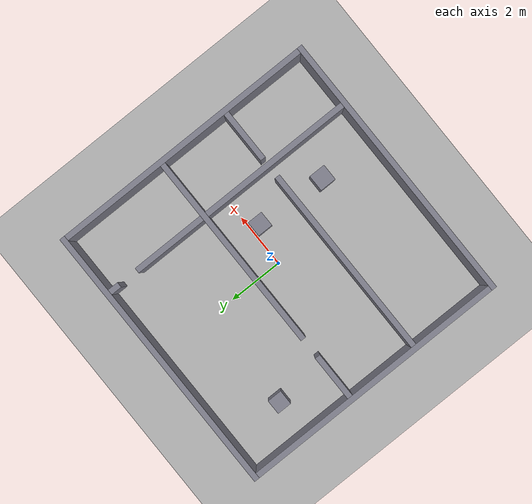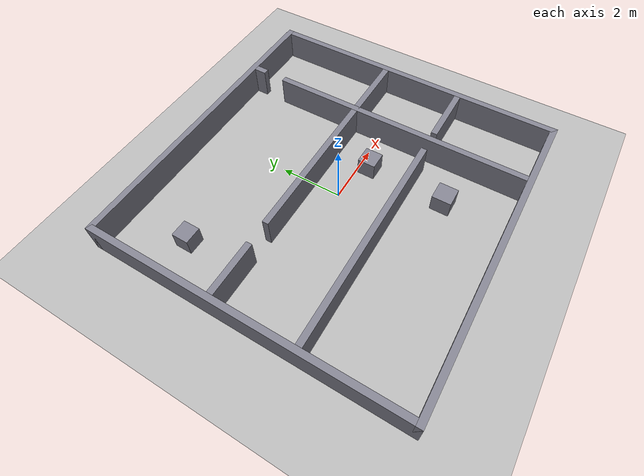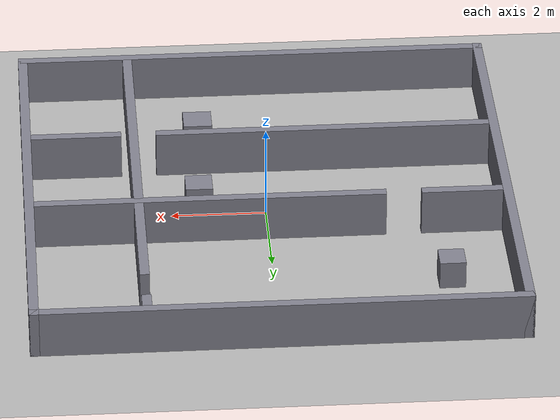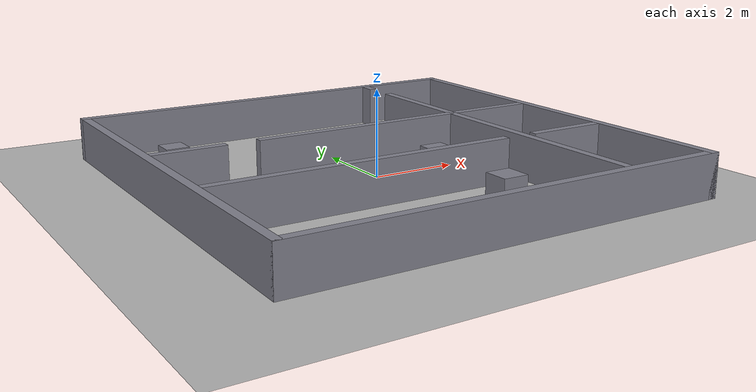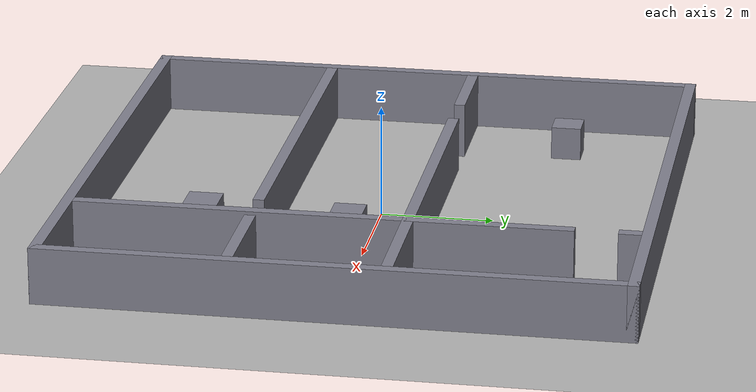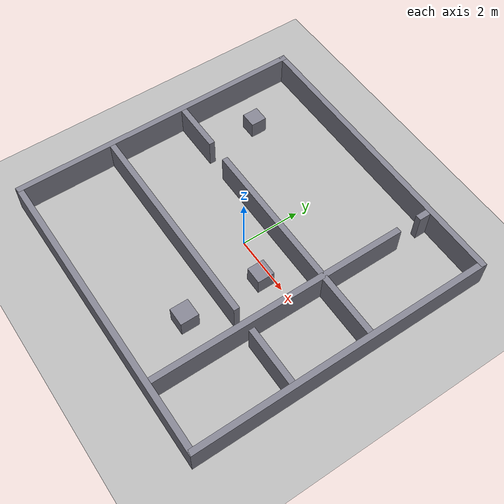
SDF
<?xml version="1.0"?>
<sdf version="1.10">
  <world name="scenario_10">
    <physics name="fast" type="ignored">
      <max_step_size>0.005</max_step_size>
      <real_time_factor>1.0</real_time_factor>
      <real_time_update_rate>200</real_time_update_rate>
    </physics>
    <plugin filename="gz-sim-physics-system" name="gz::sim::systems::Physics"/>
    <plugin filename="gz-sim-user-commands-system" name="gz::sim::systems::UserCommands"/>
    <plugin filename="gz-sim-scene-broadcaster-system" name="gz::sim::systems::SceneBroadcaster"/>
    <plugin filename="gz-sim-sensors-system" name="gz::sim::systems::Sensors">
      <render_engine>ogre2</render_engine>
    </plugin>
    <light type="directional" name="sun">
      <cast_shadows>false</cast_shadows>
      <pose>0 0 10 0 0 0</pose>
      <diffuse>0.9 0.9 0.9 1</diffuse>
      <direction>-0.5 0.2 -0.9</direction>
    </light>
    <model name="ground_plane">
      <static>true</static>
      <link name="link">
        <collision name="c"><geometry><plane><normal>0 0 1</normal><size>20 20</size></plane></geometry></collision>
        <visual name="v"><geometry><plane><normal>0 0 1</normal><size>20 20</size></plane></geometry>
          <material><ambient>0.7 0.7 0.7 1</ambient><diffuse>0.7 0.7 0.7 1</diffuse></material></visual>
      </link>
    </model>
    <model name="box_0">
      <static>true</static>
      <pose>0.0 5.0 0.5 0 0 0</pose>
      <link name="link">
        <collision name="c"><geometry><box><size>10.2 0.2 1.0</size></box></geometry></collision>
        <visual name="v"><geometry><box><size>10.2 0.2 1.0</size></box></geometry>
          <material><ambient>0.5 0.5 0.55 1</ambient><diffuse>0.5 0.5 0.55 1</diffuse></material></visual>
      </link>
    </model>
    <model name="box_1">
      <static>true</static>
      <pose>0.0 -5.0 0.5 0 0 0</pose>
      <link name="link">
        <collision name="c"><geometry><box><size>10.2 0.2 1.0</size></box></geometry></collision>
        <visual name="v"><geometry><box><size>10.2 0.2 1.0</size></box></geometry>
          <material><ambient>0.5 0.5 0.55 1</ambient><diffuse>0.5 0.5 0.55 1</diffuse></material></visual>
      </link>
    </model>
    <model name="box_2">
      <static>true</static>
      <pose>5.0 0.0 0.5 0 0 0</pose>
      <link name="link">
        <collision name="c"><geometry><box><size>0.2 10.2 1.0</size></box></geometry></collision>
        <visual name="v"><geometry><box><size>0.2 10.2 1.0</size></box></geometry>
          <material><ambient>0.5 0.5 0.55 1</ambient><diffuse>0.5 0.5 0.55 1</diffuse></material></visual>
      </link>
    </model>
    <model name="box_3">
      <static>true</static>
      <pose>-5.0 0.0 0.5 0 0 0</pose>
      <link name="link">
        <collision name="c"><geometry><box><size>0.2 10.2 1.0</size></box></geometry></collision>
        <visual name="v"><geometry><box><size>0.2 10.2 1.0</size></box></geometry>
          <material><ambient>0.5 0.5 0.55 1</ambient><diffuse>0.5 0.5 0.55 1</diffuse></material></visual>
      </link>
    </model>
    <model name="box_4">
      <static>true</static>
      <pose>-1.3315835943535488 -1.76 0.5 0 0 0</pose>
      <link name="link">
        <collision name="c"><geometry><box><size>7.136832811292903 0.2 1.0</size></box></geometry></collision>
        <visual name="v"><geometry><box><size>7.136832811292903 0.2 1.0</size></box></geometry>
          <material><ambient>0.5 0.5 0.55 1</ambient><diffuse>0.5 0.5 0.55 1</diffuse></material></visual>
      </link>
    </model>
    <model name="box_5">
      <static>true</static>
      <pose>3.9384164056464517 -1.76 0.5 0 0 0</pose>
      <link name="link">
        <collision name="c"><geometry><box><size>1.9231671887070974 0.2 1.0</size></box></geometry></collision>
        <visual name="v"><geometry><box><size>1.9231671887070974 0.2 1.0</size></box></geometry>
          <material><ambient>0.5 0.5 0.55 1</ambient><diffuse>0.5 0.5 0.55 1</diffuse></material></visual>
      </link>
    </model>
    <model name="box_6">
      <static>true</static>
      <pose>-4.04844504488171 0.92 0.5 0 0 0</pose>
      <link name="link">
        <collision name="c"><geometry><box><size>1.7031099102365799 0.2 1.0</size></box></geometry></collision>
        <visual name="v"><geometry><box><size>1.7031099102365799 0.2 1.0</size></box></geometry>
          <material><ambient>0.5 0.5 0.55 1</ambient><diffuse>0.5 0.5 0.55 1</diffuse></material></visual>
      </link>
    </model>
    <model name="box_7">
      <static>true</static>
      <pose>1.22155495511829 0.92 0.5 0 0 0</pose>
      <link name="link">
        <collision name="c"><geometry><box><size>7.356890089763421 0.2 1.0</size></box></geometry></collision>
        <visual name="v"><geometry><box><size>7.356890089763421 0.2 1.0</size></box></geometry>
          <material><ambient>0.5 0.5 0.55 1</ambient><diffuse>0.5 0.5 0.55 1</diffuse></material></visual>
      </link>
    </model>
    <model name="box_8">
      <static>true</static>
      <pose>2.72 -0.5693229110358664 0.5 0 0 0</pose>
      <link name="link">
        <collision name="c"><geometry><box><size>0.2 8.661354177928267 1.0</size></box></geometry></collision>
        <visual name="v"><geometry><box><size>0.2 8.661354177928267 1.0</size></box></geometry>
          <material><ambient>0.5 0.5 0.55 1</ambient><diffuse>0.5 0.5 0.55 1</diffuse></material></visual>
      </link>
    </model>
    <model name="box_9">
      <static>true</static>
      <pose>2.72 4.7006770889641345 0.5 0 0 0</pose>
      <link name="link">
        <collision name="c"><geometry><box><size>0.2 0.3986458220717326 1.0</size></box></geometry></collision>
        <visual name="v"><geometry><box><size>0.2 0.3986458220717326 1.0</size></box></geometry>
          <material><ambient>0.5 0.5 0.55 1</ambient><diffuse>0.5 0.5 0.55 1</diffuse></material></visual>
      </link>
    </model>
    <model name="box_10">
      <static>true</static>
      <pose>-3.64 2.88 0.3 0 0 0</pose>
      <link name="link">
        <collision name="c"><geometry><box><size>0.54 0.54 0.6</size></box></geometry></collision>
        <visual name="v"><geometry><box><size>0.54 0.54 0.6</size></box></geometry>
          <material><ambient>0.5 0.5 0.55 1</ambient><diffuse>0.5 0.5 0.55 1</diffuse></material></visual>
      </link>
    </model>
    <model name="box_11">
      <static>true</static>
      <pose>1.4 -0.35 0.3 0 0 0</pose>
      <link name="link">
        <collision name="c"><geometry><box><size>0.57 0.57 0.6</size></box></geometry></collision>
        <visual name="v"><geometry><box><size>0.57 0.57 0.6</size></box></geometry>
          <material><ambient>0.5 0.5 0.55 1</ambient><diffuse>0.5 0.5 0.55 1</diffuse></material></visual>
      </link>
    </model>
    <model name="box_12">
      <static>true</static>
      <pose>1.29 -2.94 0.3 0 0 0</pose>
      <link name="link">
        <collision name="c"><geometry><box><size>0.61 0.61 0.6</size></box></geometry></collision>
        <visual name="v"><geometry><box><size>0.61 0.61 0.6</size></box></geometry>
          <material><ambient>0.5 0.5 0.55 1</ambient><diffuse>0.5 0.5 0.55 1</diffuse></material></visual>
      </link>
    </model>
  </world>
</sdf>
